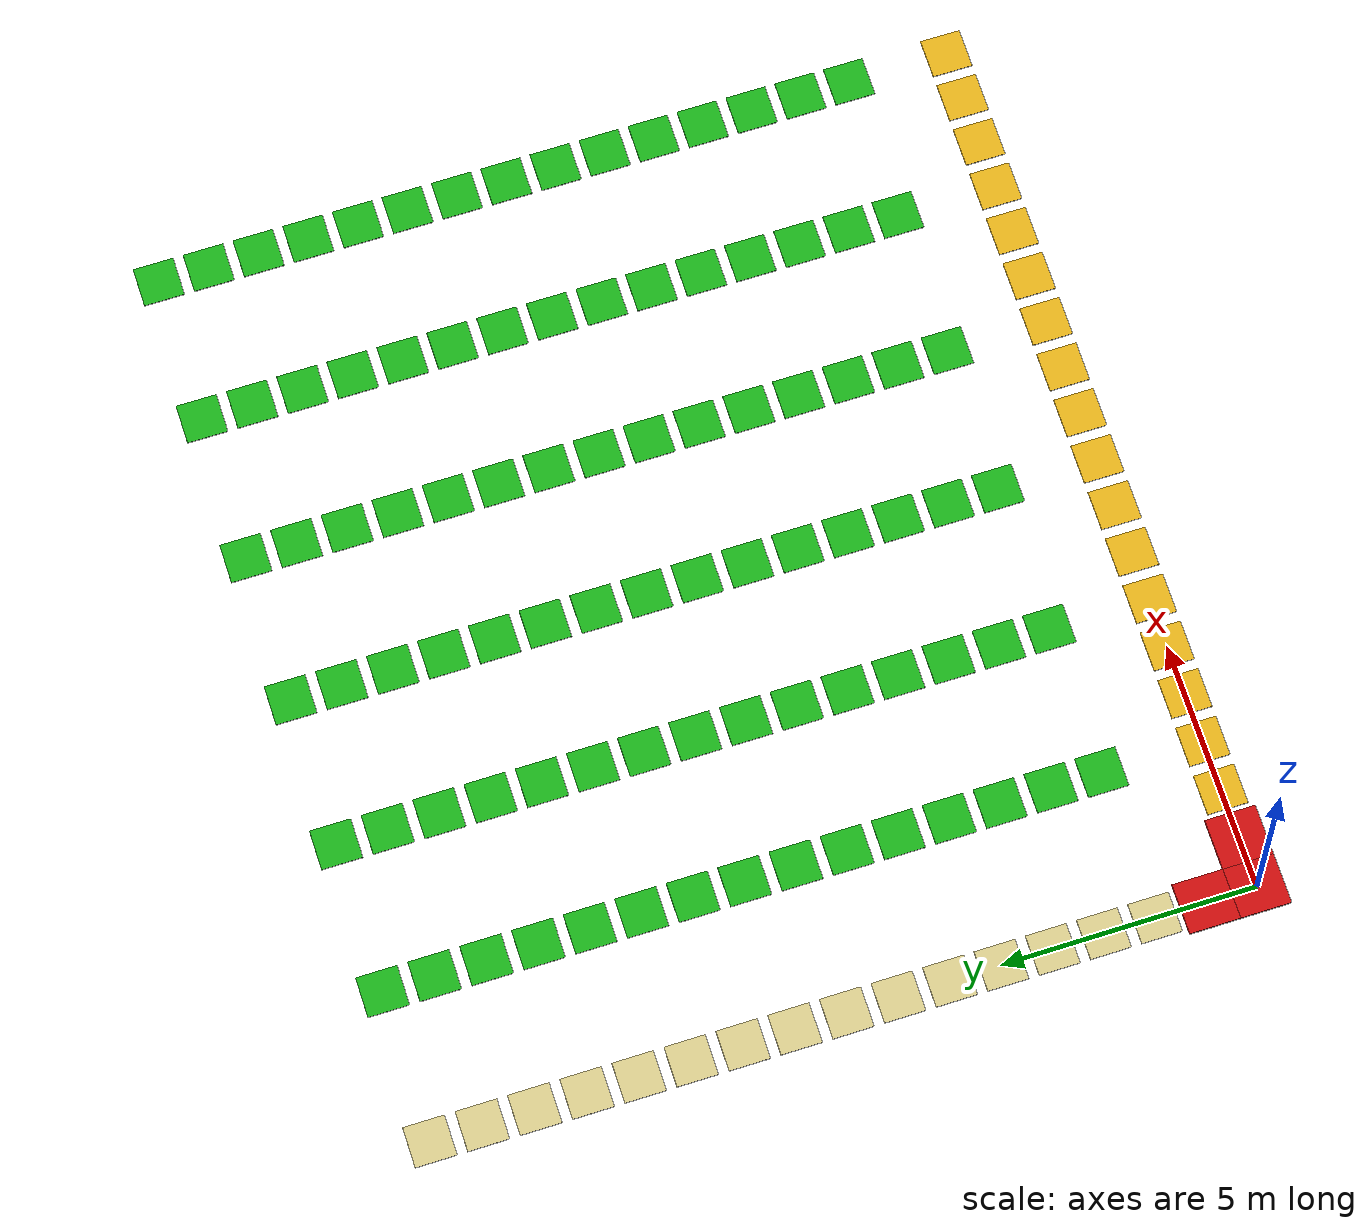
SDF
<sdf version="1.10">
 <world name="my_map">
  <model name="blocked_0000">
   <static>true</static>
   <pose>0.0
        0.0
        0.045
        0 0 0</pose>
   <link name="link">
    <visual name="visual">
     <geometry><box><size>1.0
                1.0
                0.05</size></box></geometry>
     <material><ambient>0.8 0.05 0.05 1</ambient><diffuse>0.8 0.05 0.05 1</diffuse></material>
    </visual>
   </link>
  </model>
  <model name="blocked_0001">
   <static>true</static>
   <pose>0.0
        1.0
        0.045
        0 0 0</pose>
   <link name="link">
    <visual name="visual">
     <geometry><box><size>1.0
                1.0
                0.05</size></box></geometry>
     <material><ambient>0.8 0.05 0.05 1</ambient><diffuse>0.8 0.05 0.05 1</diffuse></material>
    </visual>
   </link>
  </model>
  <model name="blocked_0004">
   <static>true</static>
   <pose>1.0
        0.0
        0.045
        0 0 0</pose>
   <link name="link">
    <visual name="visual">
     <geometry><box><size>1.0
                1.0
                0.05</size></box></geometry>
     <material><ambient>0.8 0.05 0.05 1</ambient><diffuse>0.8 0.05 0.05 1</diffuse></material>
    </visual>
   </link>
  </model>
  <model name="staging_171">
   <static>true</static>
   <pose>0.0
        16.0
        0.02
        0 0 0</pose>
   <link name="link">
    <visual name="visual">
     <geometry><box><size>0.8
                0.8
                0.02</size></box></geometry>
     <material><ambient>0.85 0.80 0.55 1</ambient><diffuse>0.85 0.80 0.55 1</diffuse></material>
    </visual>
   </link>
  </model>
  <model name="shelf_1876">
   <static>true</static>
   <pose>3.0
        16.0
        0.02
        0 0 0</pose>
   <link name="link">
    <visual name="visual">
     <geometry><box><size>0.8
                0.8
                0.02</size></box></geometry>
     <material><ambient>0.10 0.70 0.10 1</ambient><diffuse>0.10 0.70 0.10 1</diffuse></material>
    </visual>
   </link>
  </model>
  <model name="shelf_1877">
   <static>true</static>
   <pose>6.0
        16.0
        0.02
        0 0 0</pose>
   <link name="link">
    <visual name="visual">
     <geometry><box><size>0.8
                0.8
                0.02</size></box></geometry>
     <material><ambient>0.10 0.70 0.10 1</ambient><diffuse>0.10 0.70 0.10 1</diffuse></material>
    </visual>
   </link>
  </model>
  <model name="shelf_1878">
   <static>true</static>
   <pose>9.0
        16.0
        0.02
        0 0 0</pose>
   <link name="link">
    <visual name="visual">
     <geometry><box><size>0.8
                0.8
                0.02</size></box></geometry>
     <material><ambient>0.10 0.70 0.10 1</ambient><diffuse>0.10 0.70 0.10 1</diffuse></material>
    </visual>
   </link>
  </model>
  <model name="shelf_1879">
   <static>true</static>
   <pose>12.0
        16.0
        0.02
        0 0 0</pose>
   <link name="link">
    <visual name="visual">
     <geometry><box><size>0.8
                0.8
                0.02</size></box></geometry>
     <material><ambient>0.10 0.70 0.10 1</ambient><diffuse>0.10 0.70 0.10 1</diffuse></material>
    </visual>
   </link>
  </model>
  <model name="shelf_1880">
   <static>true</static>
   <pose>15.0
        16.0
        0.02
        0 0 0</pose>
   <link name="link">
    <visual name="visual">
     <geometry><box><size>0.8
                0.8
                0.02</size></box></geometry>
     <material><ambient>0.10 0.70 0.10 1</ambient><diffuse>0.10 0.70 0.10 1</diffuse></material>
    </visual>
   </link>
  </model>
  <model name="shelf_1881">
   <static>true</static>
   <pose>18.0
        16.0
        0.02
        0 0 0</pose>
   <link name="link">
    <visual name="visual">
     <geometry><box><size>0.8
                0.8
                0.02</size></box></geometry>
     <material><ambient>0.10 0.70 0.10 1</ambient><diffuse>0.10 0.70 0.10 1</diffuse></material>
    </visual>
   </link>
  </model>
  <model name="staging_173">
   <static>true</static>
   <pose>0.0
        15.0
        0.02
        0 0 0</pose>
   <link name="link">
    <visual name="visual">
     <geometry><box><size>0.8
                0.8
                0.02</size></box></geometry>
     <material><ambient>0.85 0.80 0.55 1</ambient><diffuse>0.85 0.80 0.55 1</diffuse></material>
    </visual>
   </link>
  </model>
  <model name="shelf_1901">
   <static>true</static>
   <pose>3.0
        15.0
        0.02
        0 0 0</pose>
   <link name="link">
    <visual name="visual">
     <geometry><box><size>0.8
                0.8
                0.02</size></box></geometry>
     <material><ambient>0.10 0.70 0.10 1</ambient><diffuse>0.10 0.70 0.10 1</diffuse></material>
    </visual>
   </link>
  </model>
  <model name="shelf_1902">
   <static>true</static>
   <pose>6.0
        15.0
        0.02
        0 0 0</pose>
   <link name="link">
    <visual name="visual">
     <geometry><box><size>0.8
                0.8
                0.02</size></box></geometry>
     <material><ambient>0.10 0.70 0.10 1</ambient><diffuse>0.10 0.70 0.10 1</diffuse></material>
    </visual>
   </link>
  </model>
  <model name="shelf_1903">
   <static>true</static>
   <pose>9.0
        15.0
        0.02
        0 0 0</pose>
   <link name="link">
    <visual name="visual">
     <geometry><box><size>0.8
                0.8
                0.02</size></box></geometry>
     <material><ambient>0.10 0.70 0.10 1</ambient><diffuse>0.10 0.70 0.10 1</diffuse></material>
    </visual>
   </link>
  </model>
  <model name="shelf_1904">
   <static>true</static>
   <pose>12.0
        15.0
        0.02
        0 0 0</pose>
   <link name="link">
    <visual name="visual">
     <geometry><box><size>0.8
                0.8
                0.02</size></box></geometry>
     <material><ambient>0.10 0.70 0.10 1</ambient><diffuse>0.10 0.70 0.10 1</diffuse></material>
    </visual>
   </link>
  </model>
  <model name="shelf_1905">
   <static>true</static>
   <pose>15.0
        15.0
        0.02
        0 0 0</pose>
   <link name="link">
    <visual name="visual">
     <geometry><box><size>0.8
                0.8
                0.02</size></box></geometry>
     <material><ambient>0.10 0.70 0.10 1</ambient><diffuse>0.10 0.70 0.10 1</diffuse></material>
    </visual>
   </link>
  </model>
  <model name="shelf_1906">
   <static>true</static>
   <pose>18.0
        15.0
        0.02
        0 0 0</pose>
   <link name="link">
    <visual name="visual">
     <geometry><box><size>0.8
                0.8
                0.02</size></box></geometry>
     <material><ambient>0.10 0.70 0.10 1</ambient><diffuse>0.10 0.70 0.10 1</diffuse></material>
    </visual>
   </link>
  </model>
  <model name="staging_175">
   <static>true</static>
   <pose>0.0
        14.0
        0.02
        0 0 0</pose>
   <link name="link">
    <visual name="visual">
     <geometry><box><size>0.8
                0.8
                0.02</size></box></geometry>
     <material><ambient>0.85 0.80 0.55 1</ambient><diffuse>0.85 0.80 0.55 1</diffuse></material>
    </visual>
   </link>
  </model>
  <model name="shelf_1926">
   <static>true</static>
   <pose>3.0
        14.0
        0.02
        0 0 0</pose>
   <link name="link">
    <visual name="visual">
     <geometry><box><size>0.8
                0.8
                0.02</size></box></geometry>
     <material><ambient>0.10 0.70 0.10 1</ambient><diffuse>0.10 0.70 0.10 1</diffuse></material>
    </visual>
   </link>
  </model>
  <model name="shelf_1927">
   <static>true</static>
   <pose>6.0
        14.0
        0.02
        0 0 0</pose>
   <link name="link">
    <visual name="visual">
     <geometry><box><size>0.8
                0.8
                0.02</size></box></geometry>
     <material><ambient>0.10 0.70 0.10 1</ambient><diffuse>0.10 0.70 0.10 1</diffuse></material>
    </visual>
   </link>
  </model>
  <model name="shelf_1928">
   <static>true</static>
   <pose>9.0
        14.0
        0.02
        0 0 0</pose>
   <link name="link">
    <visual name="visual">
     <geometry><box><size>0.8
                0.8
                0.02</size></box></geometry>
     <material><ambient>0.10 0.70 0.10 1</ambient><diffuse>0.10 0.70 0.10 1</diffuse></material>
    </visual>
   </link>
  </model>
  <model name="shelf_1929">
   <static>true</static>
   <pose>12.0
        14.0
        0.02
        0 0 0</pose>
   <link name="link">
    <visual name="visual">
     <geometry><box><size>0.8
                0.8
                0.02</size></box></geometry>
     <material><ambient>0.10 0.70 0.10 1</ambient><diffuse>0.10 0.70 0.10 1</diffuse></material>
    </visual>
   </link>
  </model>
  <model name="shelf_1930">
   <static>true</static>
   <pose>15.0
        14.0
        0.02
        0 0 0</pose>
   <link name="link">
    <visual name="visual">
     <geometry><box><size>0.8
                0.8
                0.02</size></box></geometry>
     <material><ambient>0.10 0.70 0.10 1</ambient><diffuse>0.10 0.70 0.10 1</diffuse></material>
    </visual>
   </link>
  </model>
  <model name="shelf_1931">
   <static>true</static>
   <pose>18.0
        14.0
        0.02
        0 0 0</pose>
   <link name="link">
    <visual name="visual">
     <geometry><box><size>0.8
                0.8
                0.02</size></box></geometry>
     <material><ambient>0.10 0.70 0.10 1</ambient><diffuse>0.10 0.70 0.10 1</diffuse></material>
    </visual>
   </link>
  </model>
  <model name="staging_177">
   <static>true</static>
   <pose>0.0
        13.0
        0.02
        0 0 0</pose>
   <link name="link">
    <visual name="visual">
     <geometry><box><size>0.8
                0.8
                0.02</size></box></geometry>
     <material><ambient>0.85 0.80 0.55 1</ambient><diffuse>0.85 0.80 0.55 1</diffuse></material>
    </visual>
   </link>
  </model>
  <model name="shelf_1951">
   <static>true</static>
   <pose>3.0
        13.0
        0.02
        0 0 0</pose>
   <link name="link">
    <visual name="visual">
     <geometry><box><size>0.8
                0.8
                0.02</size></box></geometry>
     <material><ambient>0.10 0.70 0.10 1</ambient><diffuse>0.10 0.70 0.10 1</diffuse></material>
    </visual>
   </link>
  </model>
  <model name="shelf_1952">
   <static>true</static>
   <pose>6.0
        13.0
        0.02
        0 0 0</pose>
   <link name="link">
    <visual name="visual">
     <geometry><box><size>0.8
                0.8
                0.02</size></box></geometry>
     <material><ambient>0.10 0.70 0.10 1</ambient><diffuse>0.10 0.70 0.10 1</diffuse></material>
    </visual>
   </link>
  </model>
  <model name="shelf_1953">
   <static>true</static>
   <pose>9.0
        13.0
        0.02
        0 0 0</pose>
   <link name="link">
    <visual name="visual">
     <geometry><box><size>0.8
                0.8
                0.02</size></box></geometry>
     <material><ambient>0.10 0.70 0.10 1</ambient><diffuse>0.10 0.70 0.10 1</diffuse></material>
    </visual>
   </link>
  </model>
  <model name="shelf_1954">
   <static>true</static>
   <pose>12.0
        13.0
        0.02
        0 0 0</pose>
   <link name="link">
    <visual name="visual">
     <geometry><box><size>0.8
                0.8
                0.02</size></box></geometry>
     <material><ambient>0.10 0.70 0.10 1</ambient><diffuse>0.10 0.70 0.10 1</diffuse></material>
    </visual>
   </link>
  </model>
  <model name="shelf_1955">
   <static>true</static>
   <pose>15.0
        13.0
        0.02
        0 0 0</pose>
   <link name="link">
    <visual name="visual">
     <geometry><box><size>0.8
                0.8
                0.02</size></box></geometry>
     <material><ambient>0.10 0.70 0.10 1</ambient><diffuse>0.10 0.70 0.10 1</diffuse></material>
    </visual>
   </link>
  </model>
  <model name="shelf_1956">
   <static>true</static>
   <pose>18.0
        13.0
        0.02
        0 0 0</pose>
   <link name="link">
    <visual name="visual">
     <geometry><box><size>0.8
                0.8
                0.02</size></box></geometry>
     <material><ambient>0.10 0.70 0.10 1</ambient><diffuse>0.10 0.70 0.10 1</diffuse></material>
    </visual>
   </link>
  </model>
  <model name="staging_179">
   <static>true</static>
   <pose>0.0
        12.0
        0.02
        0 0 0</pose>
   <link name="link">
    <visual name="visual">
     <geometry><box><size>0.8
                0.8
                0.02</size></box></geometry>
     <material><ambient>0.85 0.80 0.55 1</ambient><diffuse>0.85 0.80 0.55 1</diffuse></material>
    </visual>
   </link>
  </model>
  <model name="shelf_1976">
   <static>true</static>
   <pose>3.0
        12.0
        0.02
        0 0 0</pose>
   <link name="link">
    <visual name="visual">
     <geometry><box><size>0.8
                0.8
                0.02</size></box></geometry>
     <material><ambient>0.10 0.70 0.10 1</ambient><diffuse>0.10 0.70 0.10 1</diffuse></material>
    </visual>
   </link>
  </model>
  <model name="shelf_1977">
   <static>true</static>
   <pose>6.0
        12.0
        0.02
        0 0 0</pose>
   <link name="link">
    <visual name="visual">
     <geometry><box><size>0.8
                0.8
                0.02</size></box></geometry>
     <material><ambient>0.10 0.70 0.10 1</ambient><diffuse>0.10 0.70 0.10 1</diffuse></material>
    </visual>
   </link>
  </model>
  <model name="shelf_1978">
   <static>true</static>
   <pose>9.0
        12.0
        0.02
        0 0 0</pose>
   <link name="link">
    <visual name="visual">
     <geometry><box><size>0.8
                0.8
                0.02</size></box></geometry>
     <material><ambient>0.10 0.70 0.10 1</ambient><diffuse>0.10 0.70 0.10 1</diffuse></material>
    </visual>
   </link>
  </model>
  <model name="shelf_1979">
   <static>true</static>
   <pose>12.0
        12.0
        0.02
        0 0 0</pose>
   <link name="link">
    <visual name="visual">
     <geometry><box><size>0.8
                0.8
                0.02</size></box></geometry>
     <material><ambient>0.10 0.70 0.10 1</ambient><diffuse>0.10 0.70 0.10 1</diffuse></material>
    </visual>
   </link>
  </model>
  <model name="shelf_1980">
   <static>true</static>
   <pose>15.0
        12.0
        0.02
        0 0 0</pose>
   <link name="link">
    <visual name="visual">
     <geometry><box><size>0.8
                0.8
                0.02</size></box></geometry>
     <material><ambient>0.10 0.70 0.10 1</ambient><diffuse>0.10 0.70 0.10 1</diffuse></material>
    </visual>
   </link>
  </model>
  <model name="shelf_1981">
   <static>true</static>
   <pose>18.0
        12.0
        0.02
        0 0 0</pose>
   <link name="link">
    <visual name="visual">
     <geometry><box><size>0.8
                0.8
                0.02</size></box></geometry>
     <material><ambient>0.10 0.70 0.10 1</ambient><diffuse>0.10 0.70 0.10 1</diffuse></material>
    </visual>
   </link>
  </model>
  <model name="staging_181">
   <static>true</static>
   <pose>0.0
        11.0
        0.02
        0 0 0</pose>
   <link name="link">
    <visual name="visual">
     <geometry><box><size>0.8
                0.8
                0.02</size></box></geometry>
     <material><ambient>0.85 0.80 0.55 1</ambient><diffuse>0.85 0.80 0.55 1</diffuse></material>
    </visual>
   </link>
  </model>
  <model name="shelf_2001">
   <static>true</static>
   <pose>3.0
        11.0
        0.02
        0 0 0</pose>
   <link name="link">
    <visual name="visual">
     <geometry><box><size>0.8
                0.8
                0.02</size></box></geometry>
     <material><ambient>0.10 0.70 0.10 1</ambient><diffuse>0.10 0.70 0.10 1</diffuse></material>
    </visual>
   </link>
  </model>
  <model name="shelf_2002">
   <static>true</static>
   <pose>6.0
        11.0
        0.02
        0 0 0</pose>
   <link name="link">
    <visual name="visual">
     <geometry><box><size>0.8
                0.8
                0.02</size></box></geometry>
     <material><ambient>0.10 0.70 0.10 1</ambient><diffuse>0.10 0.70 0.10 1</diffuse></material>
    </visual>
   </link>
  </model>
  <model name="shelf_2003">
   <static>true</static>
   <pose>9.0
        11.0
        0.02
        0 0 0</pose>
   <link name="link">
    <visual name="visual">
     <geometry><box><size>0.8
                0.8
                0.02</size></box></geometry>
     <material><ambient>0.10 0.70 0.10 1</ambient><diffuse>0.10 0.70 0.10 1</diffuse></material>
    </visual>
   </link>
  </model>
  <model name="shelf_2004">
   <static>true</static>
   <pose>12.0
        11.0
        0.02
        0 0 0</pose>
   <link name="link">
    <visual name="visual">
     <geometry><box><size>0.8
                0.8
                0.02</size></box></geometry>
     <material><ambient>0.10 0.70 0.10 1</ambient><diffuse>0.10 0.70 0.10 1</diffuse></material>
    </visual>
   </link>
  </model>
  <model name="shelf_2005">
   <static>true</static>
   <pose>15.0
        11.0
        0.02
        0 0 0</pose>
   <link name="link">
    <visual name="visual">
     <geometry><box><size>0.8
                0.8
                0.02</size></box></geometry>
     <material><ambient>0.10 0.70 0.10 1</ambient><diffuse>0.10 0.70 0.10 1</diffuse></material>
    </visual>
   </link>
  </model>
  <model name="shelf_2006">
   <static>true</static>
   <pose>18.0
        11.0
        0.02
        0 0 0</pose>
   <link name="link">
    <visual name="visual">
     <geometry><box><size>0.8
                0.8
                0.02</size></box></geometry>
     <material><ambient>0.10 0.70 0.10 1</ambient><diffuse>0.10 0.70 0.10 1</diffuse></material>
    </visual>
   </link>
  </model>
  <model name="staging_183">
   <static>true</static>
   <pose>0.0
        10.0
        0.02
        0 0 0</pose>
   <link name="link">
    <visual name="visual">
     <geometry><box><size>0.8
                0.8
                0.02</size></box></geometry>
     <material><ambient>0.85 0.80 0.55 1</ambient><diffuse>0.85 0.80 0.55 1</diffuse></material>
    </visual>
   </link>
  </model>
  <model name="shelf_2026">
   <static>true</static>
   <pose>3.0
        10.0
        0.02
        0 0 0</pose>
   <link name="link">
    <visual name="visual">
     <geometry><box><size>0.8
                0.8
                0.02</size></box></geometry>
     <material><ambient>0.10 0.70 0.10 1</ambient><diffuse>0.10 0.70 0.10 1</diffuse></material>
    </visual>
   </link>
  </model>
  <model name="shelf_2027">
   <static>true</static>
   <pose>6.0
        10.0
        0.02
        0 0 0</pose>
   <link name="link">
    <visual name="visual">
     <geometry><box><size>0.8
                0.8
                0.02</size></box></geometry>
     <material><ambient>0.10 0.70 0.10 1</ambient><diffuse>0.10 0.70 0.10 1</diffuse></material>
    </visual>
   </link>
  </model>
  <model name="shelf_2028">
   <static>true</static>
   <pose>9.0
        10.0
        0.02
        0 0 0</pose>
   <link name="link">
    <visual name="visual">
     <geometry><box><size>0.8
                0.8
                0.02</size></box></geometry>
     <material><ambient>0.10 0.70 0.10 1</ambient><diffuse>0.10 0.70 0.10 1</diffuse></material>
    </visual>
   </link>
  </model>
  <model name="shelf_2029">
   <static>true</static>
   <pose>12.0
        10.0
        0.02
        0 0 0</pose>
   <link name="link">
    <visual name="visual">
     <geometry><box><size>0.8
                0.8
                0.02</size></box></geometry>
     <material><ambient>0.10 0.70 0.10 1</ambient><diffuse>0.10 0.70 0.10 1</diffuse></material>
    </visual>
   </link>
  </model>
  <model name="shelf_2030">
   <static>true</static>
   <pose>15.0
        10.0
        0.02
        0 0 0</pose>
   <link name="link">
    <visual name="visual">
     <geometry><box><size>0.8
                0.8
                0.02</size></box></geometry>
     <material><ambient>0.10 0.70 0.10 1</ambient><diffuse>0.10 0.70 0.10 1</diffuse></material>
    </visual>
   </link>
  </model>
  <model name="shelf_2031">
   <static>true</static>
   <pose>18.0
        10.0
        0.02
        0 0 0</pose>
   <link name="link">
    <visual name="visual">
     <geometry><box><size>0.8
                0.8
                0.02</size></box></geometry>
     <material><ambient>0.10 0.70 0.10 1</ambient><diffuse>0.10 0.70 0.10 1</diffuse></material>
    </visual>
   </link>
  </model>
  <model name="staging_185">
   <static>true</static>
   <pose>0.0
        9.0
        0.02
        0 0 0</pose>
   <link name="link">
    <visual name="visual">
     <geometry><box><size>0.8
                0.8
                0.02</size></box></geometry>
     <material><ambient>0.85 0.80 0.55 1</ambient><diffuse>0.85 0.80 0.55 1</diffuse></material>
    </visual>
   </link>
  </model>
  <model name="shelf_2051">
   <static>true</static>
   <pose>3.0
        9.0
        0.02
        0 0 0</pose>
   <link name="link">
    <visual name="visual">
     <geometry><box><size>0.8
                0.8
                0.02</size></box></geometry>
     <material><ambient>0.10 0.70 0.10 1</ambient><diffuse>0.10 0.70 0.10 1</diffuse></material>
    </visual>
   </link>
  </model>
  <model name="shelf_2052">
   <static>true</static>
   <pose>6.0
        9.0
        0.02
        0 0 0</pose>
   <link name="link">
    <visual name="visual">
     <geometry><box><size>0.8
                0.8
                0.02</size></box></geometry>
     <material><ambient>0.10 0.70 0.10 1</ambient><diffuse>0.10 0.70 0.10 1</diffuse></material>
    </visual>
   </link>
  </model>
  <model name="shelf_2053">
   <static>true</static>
   <pose>9.0
        9.0
        0.02
        0 0 0</pose>
   <link name="link">
    <visual name="visual">
     <geometry><box><size>0.8
                0.8
                0.02</size></box></geometry>
     <material><ambient>0.10 0.70 0.10 1</ambient><diffuse>0.10 0.70 0.10 1</diffuse></material>
    </visual>
   </link>
  </model>
  <model name="shelf_2054">
   <static>true</static>
   <pose>12.0
        9.0
        0.02
        0 0 0</pose>
   <link name="link">
    <visual name="visual">
     <geometry><box><size>0.8
                0.8
                0.02</size></box></geometry>
     <material><ambient>0.10 0.70 0.10 1</ambient><diffuse>0.10 0.70 0.10 1</diffuse></material>
    </visual>
   </link>
  </model>
  <model name="shelf_2055">
   <static>true</static>
   <pose>15.0
        9.0
        0.02
        0 0 0</pose>
   <link name="link">
    <visual name="visual">
     <geometry><box><size>0.8
                0.8
                0.02</size></box></geometry>
     <material><ambient>0.10 0.70 0.10 1</ambient><diffuse>0.10 0.70 0.10 1</diffuse></material>
    </visual>
   </link>
  </model>
  <model name="shelf_2056">
   <static>true</static>
   <pose>18.0
        9.0
        0.02
        0 0 0</pose>
   <link name="link">
    <visual name="visual">
     <geometry><box><size>0.8
                0.8
                0.02</size></box></geometry>
     <material><ambient>0.10 0.70 0.10 1</ambient><diffuse>0.10 0.70 0.10 1</diffuse></material>
    </visual>
   </link>
  </model>
  <model name="staging_187">
   <static>true</static>
   <pose>0.0
        8.0
        0.02
        0 0 0</pose>
   <link name="link">
    <visual name="visual">
     <geometry><box><size>0.8
                0.8
                0.02</size></box></geometry>
     <material><ambient>0.85 0.80 0.55 1</ambient><diffuse>0.85 0.80 0.55 1</diffuse></material>
    </visual>
   </link>
  </model>
  <model name="shelf_2076">
   <static>true</static>
   <pose>3.0
        8.0
        0.02
        0 0 0</pose>
   <link name="link">
    <visual name="visual">
     <geometry><box><size>0.8
                0.8
                0.02</size></box></geometry>
     <material><ambient>0.10 0.70 0.10 1</ambient><diffuse>0.10 0.70 0.10 1</diffuse></material>
    </visual>
   </link>
  </model>
  <model name="shelf_2077">
   <static>true</static>
   <pose>6.0
        8.0
        0.02
        0 0 0</pose>
   <link name="link">
    <visual name="visual">
     <geometry><box><size>0.8
                0.8
                0.02</size></box></geometry>
     <material><ambient>0.10 0.70 0.10 1</ambient><diffuse>0.10 0.70 0.10 1</diffuse></material>
    </visual>
   </link>
  </model>
  <model name="shelf_2078">
   <static>true</static>
   <pose>9.0
        8.0
        0.02
        0 0 0</pose>
   <link name="link">
    <visual name="visual">
     <geometry><box><size>0.8
                0.8
                0.02</size></box></geometry>
     <material><ambient>0.10 0.70 0.10 1</ambient><diffuse>0.10 0.70 0.10 1</diffuse></material>
    </visual>
   </link>
  </model>
  <model name="shelf_2079">
   <static>true</static>
   <pose>12.0
        8.0
        0.02
        0 0 0</pose>
   <link name="link">
    <visual name="visual">
     <geometry><box><size>0.8
                0.8
                0.02</size></box></geometry>
     <material><ambient>0.10 0.70 0.10 1</ambient><diffuse>0.10 0.70 0.10 1</diffuse></material>
    </visual>
   </link>
  </model>
  <model name="shelf_2080">
   <static>true</static>
   <pose>15.0
        8.0
        0.02
        0 0 0</pose>
   <link name="link">
    <visual name="visual">
     <geometry><box><size>0.8
                0.8
                0.02</size></box></geometry>
     <material><ambient>0.10 0.70 0.10 1</ambient><diffuse>0.10 0.70 0.10 1</diffuse></material>
    </visual>
   </link>
  </model>
  <model name="shelf_2081">
   <static>true</static>
   <pose>18.0
        8.0
        0.02
        0 0 0</pose>
   <link name="link">
    <visual name="visual">
     <geometry><box><size>0.8
                0.8
                0.02</size></box></geometry>
     <material><ambient>0.10 0.70 0.10 1</ambient><diffuse>0.10 0.70 0.10 1</diffuse></material>
    </visual>
   </link>
  </model>
  <model name="staging_189">
   <static>true</static>
   <pose>0.0
        7.0
        0.02
        0 0 0</pose>
   <link name="link">
    <visual name="visual">
     <geometry><box><size>0.8
                0.8
                0.02</size></box></geometry>
     <material><ambient>0.85 0.80 0.55 1</ambient><diffuse>0.85 0.80 0.55 1</diffuse></material>
    </visual>
   </link>
  </model>
  <model name="shelf_2101">
   <static>true</static>
   <pose>3.0
        7.0
        0.02
        0 0 0</pose>
   <link name="link">
    <visual name="visual">
     <geometry><box><size>0.8
                0.8
                0.02</size></box></geometry>
     <material><ambient>0.10 0.70 0.10 1</ambient><diffuse>0.10 0.70 0.10 1</diffuse></material>
    </visual>
   </link>
  </model>
  <model name="shelf_2102">
   <static>true</static>
   <pose>6.0
        7.0
        0.02
        0 0 0</pose>
   <link name="link">
    <visual name="visual">
     <geometry><box><size>0.8
                0.8
                0.02</size></box></geometry>
     <material><ambient>0.10 0.70 0.10 1</ambient><diffuse>0.10 0.70 0.10 1</diffuse></material>
    </visual>
   </link>
  </model>
  <model name="shelf_2103">
   <static>true</static>
   <pose>9.0
        7.0
        0.02
        0 0 0</pose>
   <link name="link">
    <visual name="visual">
     <geometry><box><size>0.8
                0.8
                0.02</size></box></geometry>
     <material><ambient>0.10 0.70 0.10 1</ambient><diffuse>0.10 0.70 0.10 1</diffuse></material>
    </visual>
   </link>
  </model>
  <model name="shelf_2104">
   <static>true</static>
   <pose>12.0
        7.0
        0.02
        0 0 0</pose>
   <link name="link">
    <visual name="visual">
     <geometry><box><size>0.8
                0.8
                0.02</size></box></geometry>
     <material><ambient>0.10 0.70 0.10 1</ambient><diffuse>0.10 0.70 0.10 1</diffuse></material>
    </visual>
   </link>
  </model>
  <model name="shelf_2105">
   <static>true</static>
   <pose>15.0
        7.0
        0.02
        0 0 0</pose>
   <link name="link">
    <visual name="visual">
     <geometry><box><size>0.8
                0.8
                0.02</size></box></geometry>
     <material><ambient>0.10 0.70 0.10 1</ambient><diffuse>0.10 0.70 0.10 1</diffuse></material>
    </visual>
   </link>
  </model>
  <model name="shelf_2106">
   <static>true</static>
   <pose>18.0
        7.0
        0.02
        0 0 0</pose>
   <link name="link">
    <visual name="visual">
     <geometry><box><size>0.8
                0.8
                0.02</size></box></geometry>
     <material><ambient>0.10 0.70 0.10 1</ambient><diffuse>0.10 0.70 0.10 1</diffuse></material>
    </visual>
   </link>
  </model>
  <model name="staging_191">
   <static>true</static>
   <pose>0.0
        6.0
        0.02
        0 0 0</pose>
   <link name="link">
    <visual name="visual">
     <geometry><box><size>0.8
                0.8
                0.02</size></box></geometry>
     <material><ambient>0.85 0.80 0.55 1</ambient><diffuse>0.85 0.80 0.55 1</diffuse></material>
    </visual>
   </link>
  </model>
  <model name="shelf_2126">
   <static>true</static>
   <pose>3.0
        6.0
        0.02
        0 0 0</pose>
   <link name="link">
    <visual name="visual">
     <geometry><box><size>0.8
                0.8
                0.02</size></box></geometry>
     <material><ambient>0.10 0.70 0.10 1</ambient><diffuse>0.10 0.70 0.10 1</diffuse></material>
    </visual>
   </link>
  </model>
  <model name="shelf_2127">
   <static>true</static>
   <pose>6.0
        6.0
        0.02
        0 0 0</pose>
   <link name="link">
    <visual name="visual">
     <geometry><box><size>0.8
                0.8
                0.02</size></box></geometry>
     <material><ambient>0.10 0.70 0.10 1</ambient><diffuse>0.10 0.70 0.10 1</diffuse></material>
    </visual>
   </link>
  </model>
  <model name="shelf_2128">
   <static>true</static>
   <pose>9.0
        6.0
        0.02
        0 0 0</pose>
   <link name="link">
    <visual name="visual">
     <geometry><box><size>0.8
                0.8
                0.02</size></box></geometry>
     <material><ambient>0.10 0.70 0.10 1</ambient><diffuse>0.10 0.70 0.10 1</diffuse></material>
    </visual>
   </link>
  </model>
  <model name="shelf_2129">
   <static>true</static>
   <pose>12.0
        6.0
        0.02
        0 0 0</pose>
   <link name="link">
    <visual name="visual">
     <geometry><box><size>0.8
                0.8
                0.02</size></box></geometry>
     <material><ambient>0.10 0.70 0.10 1</ambient><diffuse>0.10 0.70 0.10 1</diffuse></material>
    </visual>
   </link>
  </model>
  <model name="shelf_2130">
   <static>true</static>
   <pose>15.0
        6.0
        0.02
        0 0 0</pose>
   <link name="link">
    <visual name="visual">
     <geometry><box><size>0.8
                0.8
                0.02</size></box></geometry>
     <material><ambient>0.10 0.70 0.10 1</ambient><diffuse>0.10 0.70 0.10 1</diffuse></material>
    </visual>
   </link>
  </model>
  <model name="shelf_2131">
   <static>true</static>
   <pose>18.0
        6.0
        0.02
        0 0 0</pose>
   <link name="link">
    <visual name="visual">
     <geometry><box><size>0.8
                0.8
                0.02</size></box></geometry>
     <material><ambient>0.10 0.70 0.10 1</ambient><diffuse>0.10 0.70 0.10 1</diffuse></material>
    </visual>
   </link>
  </model>
  <model name="staging_193">
   <static>true</static>
   <pose>0.0
        5.0
        0.02
        0 0 0</pose>
   <link name="link">
    <visual name="visual">
     <geometry><box><size>0.8
                0.8
                0.02</size></box></geometry>
     <material><ambient>0.85 0.80 0.55 1</ambient><diffuse>0.85 0.80 0.55 1</diffuse></material>
    </visual>
   </link>
  </model>
  <model name="shelf_2151">
   <static>true</static>
   <pose>3.0
        5.0
        0.02
        0 0 0</pose>
   <link name="link">
    <visual name="visual">
     <geometry><box><size>0.8
                0.8
                0.02</size></box></geometry>
     <material><ambient>0.10 0.70 0.10 1</ambient><diffuse>0.10 0.70 0.10 1</diffuse></material>
    </visual>
   </link>
  </model>
  <model name="shelf_2152">
   <static>true</static>
   <pose>6.0
        5.0
        0.02
        0 0 0</pose>
   <link name="link">
    <visual name="visual">
     <geometry><box><size>0.8
                0.8
                0.02</size></box></geometry>
     <material><ambient>0.10 0.70 0.10 1</ambient><diffuse>0.10 0.70 0.10 1</diffuse></material>
    </visual>
   </link>
  </model>
  <model name="shelf_2153">
   <static>true</static>
   <pose>9.0
        5.0
        0.02
        0 0 0</pose>
   <link name="link">
    <visual name="visual">
     <geometry><box><size>0.8
                0.8
                0.02</size></box></geometry>
     <material><ambient>0.10 0.70 0.10 1</ambient><diffuse>0.10 0.70 0.10 1</diffuse></material>
    </visual>
   </link>
  </model>
  <model name="shelf_2154">
   <static>true</static>
   <pose>12.0
        5.0
        0.02
        0 0 0</pose>
   <link name="link">
    <visual name="visual">
     <geometry><box><size>0.8
                0.8
                0.02</size></box></geometry>
     <material><ambient>0.10 0.70 0.10 1</ambient><diffuse>0.10 0.70 0.10 1</diffuse></material>
    </visual>
   </link>
  </model>
  <model name="shelf_2155">
   <static>true</static>
   <pose>15.0
        5.0
        0.02
        0 0 0</pose>
   <link name="link">
    <visual name="visual">
     <geometry><box><size>0.8
                0.8
                0.02</size></box></geometry>
     <material><ambient>0.10 0.70 0.10 1</ambient><diffuse>0.10 0.70 0.10 1</diffuse></material>
    </visual>
   </link>
  </model>
  <model name="shelf_2156">
   <static>true</static>
   <pose>18.0
        5.0
        0.02
        0 0 0</pose>
   <link name="link">
    <visual name="visual">
     <geometry><box><size>0.8
                0.8
                0.02</size></box></geometry>
     <material><ambient>0.10 0.70 0.10 1</ambient><diffuse>0.10 0.70 0.10 1</diffuse></material>
    </visual>
   </link>
  </model>
  <model name="staging_195">
   <static>true</static>
   <pose>0.0
        4.0
        0.02
        0 0 0</pose>
   <link name="link">
    <visual name="visual">
     <geometry><box><size>0.8
                0.8
                0.02</size></box></geometry>
     <material><ambient>0.85 0.80 0.55 1</ambient><diffuse>0.85 0.80 0.55 1</diffuse></material>
    </visual>
   </link>
  </model>
  <model name="shelf_2176">
   <static>true</static>
   <pose>3.0
        4.0
        0.02
        0 0 0</pose>
   <link name="link">
    <visual name="visual">
     <geometry><box><size>0.8
                0.8
                0.02</size></box></geometry>
     <material><ambient>0.10 0.70 0.10 1</ambient><diffuse>0.10 0.70 0.10 1</diffuse></material>
    </visual>
   </link>
  </model>
  <model name="shelf_2177">
   <static>true</static>
   <pose>6.0
        4.0
        0.02
        0 0 0</pose>
   <link name="link">
    <visual name="visual">
     <geometry><box><size>0.8
                0.8
                0.02</size></box></geometry>
     <material><ambient>0.10 0.70 0.10 1</ambient><diffuse>0.10 0.70 0.10 1</diffuse></material>
    </visual>
   </link>
  </model>
  <model name="shelf_2178">
   <static>true</static>
   <pose>9.0
        4.0
        0.02
        0 0 0</pose>
   <link name="link">
    <visual name="visual">
     <geometry><box><size>0.8
                0.8
                0.02</size></box></geometry>
     <material><ambient>0.10 0.70 0.10 1</ambient><diffuse>0.10 0.70 0.10 1</diffuse></material>
    </visual>
   </link>
  </model>
  <model name="shelf_2179">
   <static>true</static>
   <pose>12.0
        4.0
        0.02
        0 0 0</pose>
   <link name="link">
    <visual name="visual">
     <geometry><box><size>0.8
                0.8
                0.02</size></box></geometry>
     <material><ambient>0.10 0.70 0.10 1</ambient><diffuse>0.10 0.70 0.10 1</diffuse></material>
    </visual>
   </link>
  </model>
  <model name="shelf_2180">
   <static>true</static>
   <pose>15.0
        4.0
        0.02
        0 0 0</pose>
   <link name="link">
    <visual name="visual">
     <geometry><box><size>0.8
                0.8
                0.02</size></box></geometry>
     <material><ambient>0.10 0.70 0.10 1</ambient><diffuse>0.10 0.70 0.10 1</diffuse></material>
    </visual>
   </link>
  </model>
  <model name="shelf_2181">
   <static>true</static>
   <pose>18.0
        4.0
        0.02
        0 0 0</pose>
   <link name="link">
    <visual name="visual">
     <geometry><box><size>0.8
                0.8
                0.02</size></box></geometry>
     <material><ambient>0.10 0.70 0.10 1</ambient><diffuse>0.10 0.70 0.10 1</diffuse></material>
    </visual>
   </link>
  </model>
  <model name="staging_197">
   <static>true</static>
   <pose>0.0
        3.0
        0.02
        0 0 0</pose>
   <link name="link">
    <visual name="visual">
     <geometry><box><size>0.8
                0.8
                0.02</size></box></geometry>
     <material><ambient>0.85 0.80 0.55 1</ambient><diffuse>0.85 0.80 0.55 1</diffuse></material>
    </visual>
   </link>
  </model>
  <model name="shelf_2201">
   <static>true</static>
   <pose>3.0
        3.0
        0.02
        0 0 0</pose>
   <link name="link">
    <visual name="visual">
     <geometry><box><size>0.8
                0.8
                0.02</size></box></geometry>
     <material><ambient>0.10 0.70 0.10 1</ambient><diffuse>0.10 0.70 0.10 1</diffuse></material>
    </visual>
   </link>
  </model>
  <model name="shelf_2202">
   <static>true</static>
   <pose>6.0
        3.0
        0.02
        0 0 0</pose>
   <link name="link">
    <visual name="visual">
     <geometry><box><size>0.8
                0.8
                0.02</size></box></geometry>
     <material><ambient>0.10 0.70 0.10 1</ambient><diffuse>0.10 0.70 0.10 1</diffuse></material>
    </visual>
   </link>
  </model>
  <model name="shelf_2203">
   <static>true</static>
   <pose>9.0
        3.0
        0.02
        0 0 0</pose>
   <link name="link">
    <visual name="visual">
     <geometry><box><size>0.8
                0.8
                0.02</size></box></geometry>
     <material><ambient>0.10 0.70 0.10 1</ambient><diffuse>0.10 0.70 0.10 1</diffuse></material>
    </visual>
   </link>
  </model>
  <model name="shelf_2204">
   <static>true</static>
   <pose>12.0
        3.0
        0.02
        0 0 0</pose>
   <link name="link">
    <visual name="visual">
     <geometry><box><size>0.8
                0.8
                0.02</size></box></geometry>
     <material><ambient>0.10 0.70 0.10 1</ambient><diffuse>0.10 0.70 0.10 1</diffuse></material>
    </visual>
   </link>
  </model>
  <model name="shelf_2205">
   <static>true</static>
   <pose>15.0
        3.0
        0.02
        0 0 0</pose>
   <link name="link">
    <visual name="visual">
     <geometry><box><size>0.8
                0.8
                0.02</size></box></geometry>
     <material><ambient>0.10 0.70 0.10 1</ambient><diffuse>0.10 0.70 0.10 1</diffuse></material>
    </visual>
   </link>
  </model>
  <model name="shelf_2206">
   <static>true</static>
   <pose>18.0
        3.0
        0.02
        0 0 0</pose>
   <link name="link">
    <visual name="visual">
     <geometry><box><size>0.8
                0.8
                0.02</size></box></geometry>
     <material><ambient>0.10 0.70 0.10 1</ambient><diffuse>0.10 0.70 0.10 1</diffuse></material>
    </visual>
   </link>
  </model>
  <model name="staging_199">
   <static>true</static>
   <pose>0.0
        2.0
        0.02
        0 0 0</pose>
   <link name="link">
    <visual name="visual">
     <geometry><box><size>0.8
                0.8
                0.02</size></box></geometry>
     <material><ambient>0.85 0.80 0.55 1</ambient><diffuse>0.85 0.80 0.55 1</diffuse></material>
    </visual>
   </link>
  </model>
  <model name="shelf_2226">
   <static>true</static>
   <pose>3.0
        2.0
        0.02
        0 0 0</pose>
   <link name="link">
    <visual name="visual">
     <geometry><box><size>0.8
                0.8
                0.02</size></box></geometry>
     <material><ambient>0.10 0.70 0.10 1</ambient><diffuse>0.10 0.70 0.10 1</diffuse></material>
    </visual>
   </link>
  </model>
  <model name="shelf_2227">
   <static>true</static>
   <pose>6.0
        2.0
        0.02
        0 0 0</pose>
   <link name="link">
    <visual name="visual">
     <geometry><box><size>0.8
                0.8
                0.02</size></box></geometry>
     <material><ambient>0.10 0.70 0.10 1</ambient><diffuse>0.10 0.70 0.10 1</diffuse></material>
    </visual>
   </link>
  </model>
  <model name="shelf_2228">
   <static>true</static>
   <pose>9.0
        2.0
        0.02
        0 0 0</pose>
   <link name="link">
    <visual name="visual">
     <geometry><box><size>0.8
                0.8
                0.02</size></box></geometry>
     <material><ambient>0.10 0.70 0.10 1</ambient><diffuse>0.10 0.70 0.10 1</diffuse></material>
    </visual>
   </link>
  </model>
  <model name="shelf_2229">
   <static>true</static>
   <pose>12.0
        2.0
        0.02
        0 0 0</pose>
   <link name="link">
    <visual name="visual">
     <geometry><box><size>0.8
                0.8
                0.02</size></box></geometry>
     <material><ambient>0.10 0.70 0.10 1</ambient><diffuse>0.10 0.70 0.10 1</diffuse></material>
    </visual>
   </link>
  </model>
  <model name="shelf_2230">
   <static>true</static>
   <pose>15.0
        2.0
        0.02
        0 0 0</pose>
   <link name="link">
    <visual name="visual">
     <geometry><box><size>0.8
                0.8
                0.02</size></box></geometry>
     <material><ambient>0.10 0.70 0.10 1</ambient><diffuse>0.10 0.70 0.10 1</diffuse></material>
    </visual>
   </link>
  </model>
  <model name="shelf_2231">
   <static>true</static>
   <pose>18.0
        2.0
        0.02
        0 0 0</pose>
   <link name="link">
    <visual name="visual">
     <geometry><box><size>0.8
                0.8
                0.02</size></box></geometry>
     <material><ambient>0.10 0.70 0.10 1</ambient><diffuse>0.10 0.70 0.10 1</diffuse></material>
    </visual>
   </link>
  </model>
  <model name="dropoff_001">
   <static>true</static>
   <pose>2.0
        0.0
        0.02
        0 0 0</pose>
   <link name="link">
    <visual name="visual">
     <geometry><box><size>0.8
                0.8
                0.02</size></box></geometry>
     <material><ambient>0.90 0.70 0.10 1</ambient><diffuse>0.90 0.70 0.10 1</diffuse></material>
    </visual>
   </link>
  </model>
  <model name="dropoff_002">
   <static>true</static>
   <pose>3.0
        0.0
        0.02
        0 0 0</pose>
   <link name="link">
    <visual name="visual">
     <geometry><box><size>0.8
                0.8
                0.02</size></box></geometry>
     <material><ambient>0.90 0.70 0.10 1</ambient><diffuse>0.90 0.70 0.10 1</diffuse></material>
    </visual>
   </link>
  </model>
  <model name="dropoff_003">
   <static>true</static>
   <pose>4.0
        0.0
        0.02
        0 0 0</pose>
   <link name="link">
    <visual name="visual">
     <geometry><box><size>0.8
                0.8
                0.02</size></box></geometry>
     <material><ambient>0.90 0.70 0.10 1</ambient><diffuse>0.90 0.70 0.10 1</diffuse></material>
    </visual>
   </link>
  </model>
  <model name="dropoff_004">
   <static>true</static>
   <pose>5.0
        0.0
        0.02
        0 0 0</pose>
   <link name="link">
    <visual name="visual">
     <geometry><box><size>0.8
                0.8
                0.02</size></box></geometry>
     <material><ambient>0.90 0.70 0.10 1</ambient><diffuse>0.90 0.70 0.10 1</diffuse></material>
    </visual>
   </link>
  </model>
  <model name="dropoff_005">
   <static>true</static>
   <pose>6.0
        0.0
        0.02
        0 0 0</pose>
   <link name="link">
    <visual name="visual">
     <geometry><box><size>0.8
                0.8
                0.02</size></box></geometry>
     <material><ambient>0.90 0.70 0.10 1</ambient><diffuse>0.90 0.70 0.10 1</diffuse></material>
    </visual>
   </link>
  </model>
  <model name="dropoff_006">
   <static>true</static>
   <pose>7.0
        0.0
        0.02
        0 0 0</pose>
   <link name="link">
    <visual name="visual">
     <geometry><box><size>0.8
                0.8
                0.02</size></box></geometry>
     <material><ambient>0.90 0.70 0.10 1</ambient><diffuse>0.90 0.70 0.10 1</diffuse></material>
    </visual>
   </link>
  </model>
  <model name="dropoff_007">
   <static>true</static>
   <pose>8.0
        0.0
        0.02
        0 0 0</pose>
   <link name="link">
    <visual name="visual">
     <geometry><box><size>0.8
                0.8
                0.02</size></box></geometry>
     <material><ambient>0.90 0.70 0.10 1</ambient><diffuse>0.90 0.70 0.10 1</diffuse></material>
    </visual>
   </link>
  </model>
  <model name="dropoff_008">
   <static>true</static>
   <pose>9.0
        0.0
        0.02
        0 0 0</pose>
   <link name="link">
    <visual name="visual">
     <geometry><box><size>0.8
                0.8
                0.02</size></box></geometry>
     <material><ambient>0.90 0.70 0.10 1</ambient><diffuse>0.90 0.70 0.10 1</diffuse></material>
    </visual>
   </link>
  </model>
  <model name="dropoff_009">
   <static>true</static>
   <pose>10.0
        0.0
        0.02
        0 0 0</pose>
   <link name="link">
    <visual name="visual">
     <geometry><box><size>0.8
                0.8
                0.02</size></box></geometry>
     <material><ambient>0.90 0.70 0.10 1</ambient><diffuse>0.90 0.70 0.10 1</diffuse></material>
    </visual>
   </link>
  </model>
  <model name="dropoff_010">
   <static>true</static>
   <pose>11.0
        0.0
        0.02
        0 0 0</pose>
   <link name="link">
    <visual name="visual">
     <geometry><box><size>0.8
                0.8
                0.02</size></box></geometry>
     <material><ambient>0.90 0.70 0.10 1</ambient><diffuse>0.90 0.70 0.10 1</diffuse></material>
    </visual>
   </link>
  </model>
  <model name="dropoff_011">
   <static>true</static>
   <pose>12.0
        0.0
        0.02
        0 0 0</pose>
   <link name="link">
    <visual name="visual">
     <geometry><box><size>0.8
                0.8
                0.02</size></box></geometry>
     <material><ambient>0.90 0.70 0.10 1</ambient><diffuse>0.90 0.70 0.10 1</diffuse></material>
    </visual>
   </link>
  </model>
  <model name="dropoff_012">
   <static>true</static>
   <pose>13.0
        0.0
        0.02
        0 0 0</pose>
   <link name="link">
    <visual name="visual">
     <geometry><box><size>0.8
                0.8
                0.02</size></box></geometry>
     <material><ambient>0.90 0.70 0.10 1</ambient><diffuse>0.90 0.70 0.10 1</diffuse></material>
    </visual>
   </link>
  </model>
  <model name="dropoff_013">
   <static>true</static>
   <pose>14.0
        0.0
        0.02
        0 0 0</pose>
   <link name="link">
    <visual name="visual">
     <geometry><box><size>0.8
                0.8
                0.02</size></box></geometry>
     <material><ambient>0.90 0.70 0.10 1</ambient><diffuse>0.90 0.70 0.10 1</diffuse></material>
    </visual>
   </link>
  </model>
  <model name="dropoff_014">
   <static>true</static>
   <pose>15.0
        0.0
        0.02
        0 0 0</pose>
   <link name="link">
    <visual name="visual">
     <geometry><box><size>0.8
                0.8
                0.02</size></box></geometry>
     <material><ambient>0.90 0.70 0.10 1</ambient><diffuse>0.90 0.70 0.10 1</diffuse></material>
    </visual>
   </link>
  </model>
  <model name="dropoff_015">
   <static>true</static>
   <pose>16.0
        0.0
        0.02
        0 0 0</pose>
   <link name="link">
    <visual name="visual">
     <geometry><box><size>0.8
                0.8
                0.02</size></box></geometry>
     <material><ambient>0.90 0.70 0.10 1</ambient><diffuse>0.90 0.70 0.10 1</diffuse></material>
    </visual>
   </link>
  </model>
  <model name="dropoff_016">
   <static>true</static>
   <pose>17.0
        0.0
        0.02
        0 0 0</pose>
   <link name="link">
    <visual name="visual">
     <geometry><box><size>0.8
                0.8
                0.02</size></box></geometry>
     <material><ambient>0.90 0.70 0.10 1</ambient><diffuse>0.90 0.70 0.10 1</diffuse></material>
    </visual>
   </link>
  </model>
  <model name="dropoff_017">
   <static>true</static>
   <pose>18.0
        0.0
        0.02
        0 0 0</pose>
   <link name="link">
    <visual name="visual">
     <geometry><box><size>0.8
                0.8
                0.02</size></box></geometry>
     <material><ambient>0.90 0.70 0.10 1</ambient><diffuse>0.90 0.70 0.10 1</diffuse></material>
    </visual>
   </link>
  </model>
 </world>
</sdf>
